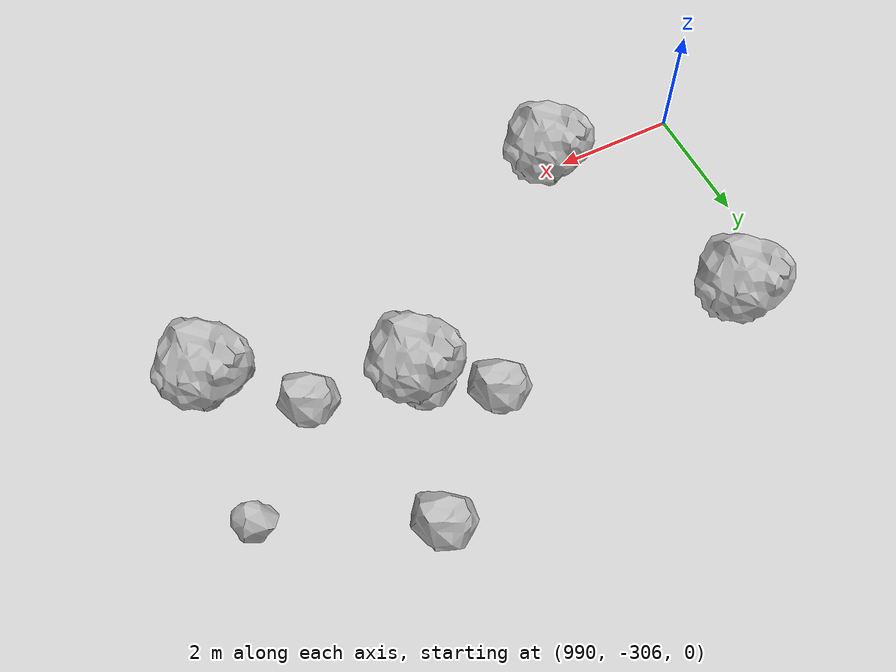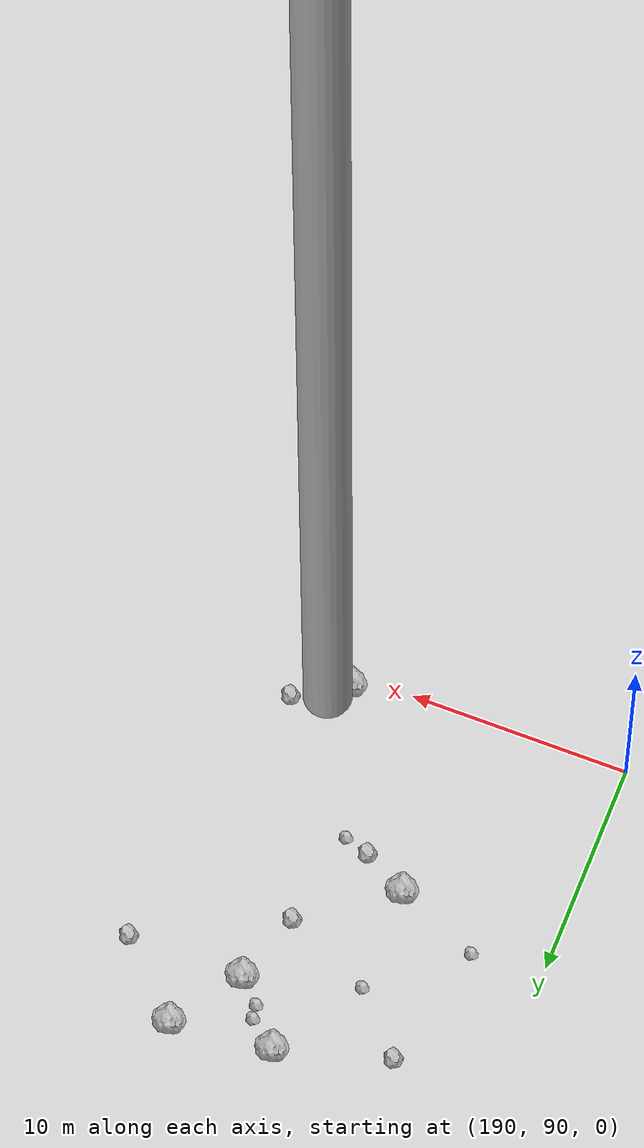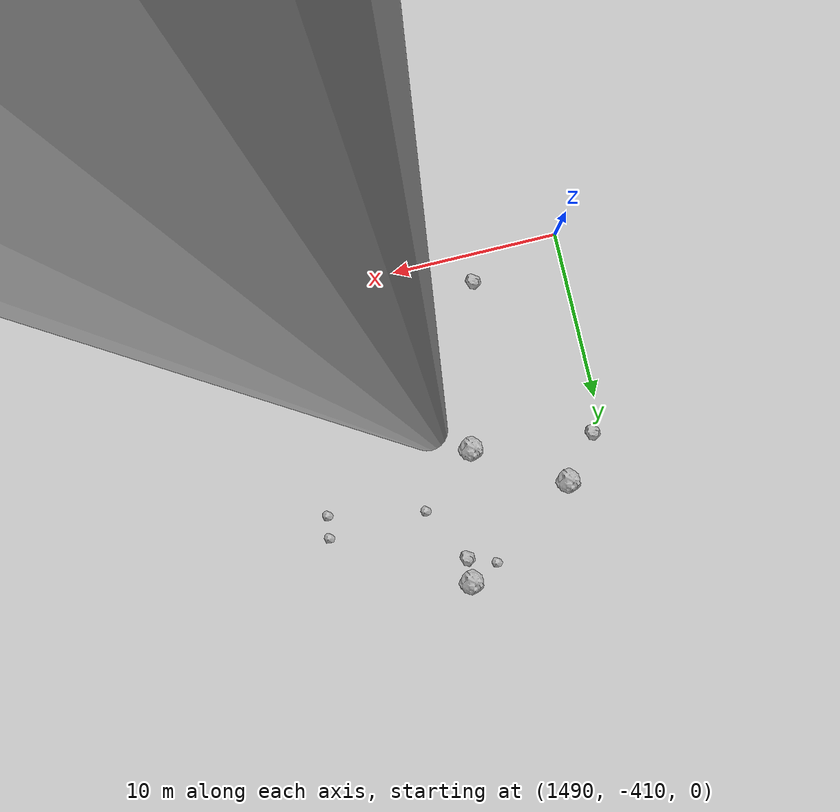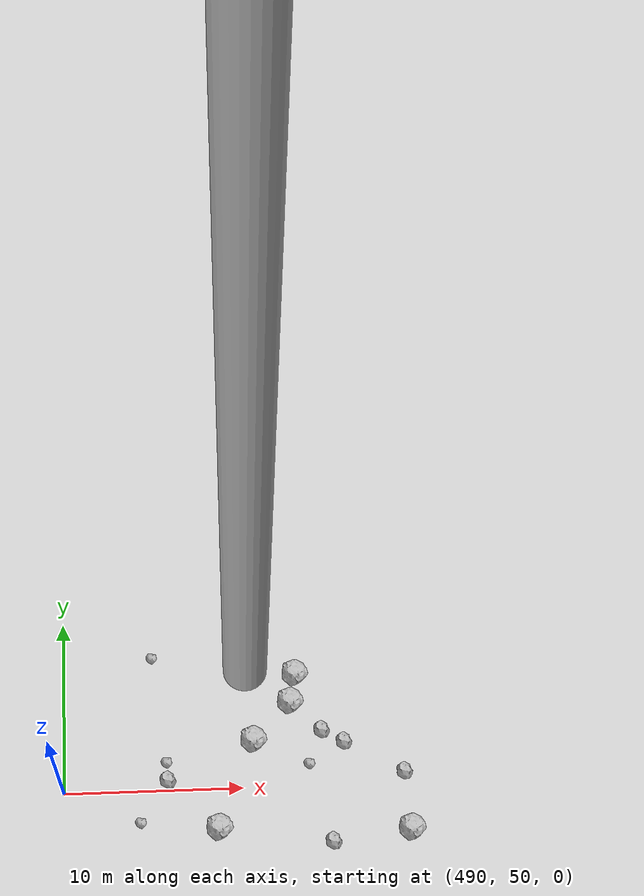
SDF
<?xml version="1.0" ?>
<sdf version="1.6">
  <world name="default">

    <include>
      <uri>model://custom_ground</uri>
    </include>

    <include>
      <uri>model://sun</uri>
    </include>

    <spherical_coordinates>
      <surface_model>EARTH_WGS84</surface_model>
      <latitude_deg>38.161479</latitude_deg>
      <longitude_deg>-122.454630</longitude_deg>
      <elevation>488.0</elevation>
      <heading_deg>90</heading_deg>
    </spherical_coordinates>

    <model name="rock1_0_0">
      <include>
        <uri>model://rock1</uri>
        <pose>18.213155971556475 -3.39460572680591 0.5 0 0 0</pose>
      </include>
    </model>
    <model name="rock1_0_1">
      <include>
        <uri>model://rock1</uri>
        <pose>11.058000199395437 2.4656792155513436 0.5 0 0 0</pose>
      </include>
    </model>
    <model name="rock1_0_2">
      <include>
        <uri>model://rock1</uri>
        <pose>12.27640485391287 2.4503245300040035 0.5 0 0 0</pose>
      </include>
    </model>
    <model name="rock1_0_3">
      <include>
        <uri>model://rock1</uri>
        <pose>16.203168376960665 5.421737206979117 0.5 0 0 0</pose>
      </include>
    </model>
    <model name="rock1_0_4">
      <include>
        <uri>model://rock1</uri>
        <pose>11.284472543740316 3.2859666349605448 0.5 0 0 0</pose>
      </include>
    </model>
    <model name="rock2_0_0">
      <include>
        <uri>model://rock2</uri>
        <pose>15.691867810275738 0.47504765235381896 0.3 0 0 0</pose>
      </include>
    </model>
    <model name="rock2_0_1">
      <include>
        <uri>model://rock2</uri>
        <pose>12.354664125736303 1.4828307257946243 0.3 0 0 0</pose>
      </include>
    </model>
    <model name="rock2_0_2">
      <include>
        <uri>model://rock2</uri>
        <pose>17.91942638184859 5.359239718975852 0.3 0 0 0</pose>
      </include>
    </model>
    <model name="rock2_0_3">
      <include>
        <uri>model://rock2</uri>
        <pose>12.220711812336793 8.499151361618967 0.3 0 0 0</pose>
      </include>
    </model>
    <model name="rock2_0_4">
      <include>
        <uri>model://rock2</uri>
        <pose>9.209998042352153 -8.281199531144516 0.3 0 0 0</pose>
      </include>
    </model>
    <model name="rock3_0_0">
      <include>
        <uri>model://rock3</uri>
        <pose>16.871394474673085 4.780746959759988 0.2 0 0 0</pose>
      </include>
    </model>
    <model name="rock3_0_1">
      <include>
        <uri>model://rock3</uri>
        <pose>12.114181535744816 5.244123502658004 0.2 0 0 0</pose>
      </include>
    </model>
    <model name="rock3_0_2">
      <include>
        <uri>model://rock3</uri>
        <pose>2.167451686059878 4.8133325410114995 0.2 0 0 0</pose>
      </include>
    </model>
    <model name="rock3_0_3">
      <include>
        <uri>model://rock3</uri>
        <pose>1.8353735488164635 2.455813272540226 0.2 0 0 0</pose>
      </include>
    </model>
    <model name="rock3_0_4">
      <include>
        <uri>model://rock3</uri>
        <pose>6.335147070161531 -9.15412961583968 0.2 0 0 0</pose>
      </include>
    </model>
    <model name="rock1_1_0">
      <include>
        <uri>model://rock1</uri>
        <pose>204.18389890398956 108.26773534740549 0.5 0 0 0</pose>
      </include>
    </model>
    <model name="rock1_1_1">
      <include>
        <uri>model://rock1</uri>
        <pose>202.04435876106868 105.18961795881529 0.5 0 0 0</pose>
      </include>
    </model>
    <model name="rock1_1_2">
      <include>
        <uri>model://rock1</uri>
        <pose>202.7571538789295 90.60025432924182 0.5 0 0 0</pose>
      </include>
    </model>
    <model name="rock1_1_3">
      <include>
        <uri>model://rock1</uri>
        <pose>199.60869687236857 107.83770855076253 0.5 0 0 0</pose>
      </include>
    </model>
    <model name="rock1_1_4">
      <include>
        <uri>model://rock1</uri>
        <pose>197.07571412070553 98.98963754792291 0.5 0 0 0</pose>
      </include>
    </model>
    <model name="rock2_1_0">
      <include>
        <uri>model://rock2</uri>
        <pose>205.02147611531885 92.03067925826673 0.3 0 0 0</pose>
      </include>
    </model>
    <model name="rock2_1_1">
      <include>
        <uri>model://rock2</uri>
        <pose>201.01990820530875 101.92537705174175 0.3 0 0 0</pose>
      </include>
    </model>
    <model name="rock2_1_2">
      <include>
        <uri>model://rock2</uri>
        <pose>194.5982786533356 106.36437508244806 0.3 0 0 0</pose>
      </include>
    </model>
    <model name="rock2_1_3">
      <include>
        <uri>model://rock2</uri>
        <pose>199.1031930461876 97.86658763567877 0.3 0 0 0</pose>
      </include>
    </model>
    <model name="rock2_1_4">
      <include>
        <uri>model://rock2</uri>
        <pose>207.30771266107809 105.19816762013924 0.3 0 0 0</pose>
      </include>
    </model>
    <model name="rock3_1_0">
      <include>
        <uri>model://rock3</uri>
        <pose>200.9707431756032 106.14387410031068 0.2 0 0 0</pose>
      </include>
    </model>
    <model name="rock3_1_1">
      <include>
        <uri>model://rock3</uri>
        <pose>193.2132343482697 100.55476282193197 0.2 0 0 0</pose>
      </include>
    </model>
    <model name="rock3_1_2">
      <include>
        <uri>model://rock3</uri>
        <pose>197.01584307325638 103.73664620584957 0.2 0 0 0</pose>
      </include>
    </model>
    <model name="rock3_1_3">
      <include>
        <uri>model://rock3</uri>
        <pose>200.86184232577392 106.78437941748692 0.2 0 0 0</pose>
      </include>
    </model>
    <model name="rock3_1_4">
      <include>
        <uri>model://rock3</uri>
        <pose>200.23423120986658 97.43946211583923 0.2 0 0 0</pose>
      </include>
    </model>
    <model name="rock1_2_0">
      <include>
        <uri>model://rock1</uri>
        <pose>500.6624167556843 52.68753830297562 0.5 0 0 0</pose>
      </include>
    </model>
    <model name="rock1_2_1">
      <include>
        <uri>model://rock1</uri>
        <pose>498.5989358622699 47.72762652828924 0.5 0 0 0</pose>
      </include>
    </model>
    <model name="rock1_2_2">
      <include>
        <uri>model://rock1</uri>
        <pose>503.14525480021206 56.51194829841153 0.5 0 0 0</pose>
      </include>
    </model>
    <model name="rock1_2_3">
      <include>
        <uri>model://rock1</uri>
        <pose>502.81354167724083 54.86591665694458 0.5 0 0 0</pose>
      </include>
    </model>
    <model name="rock1_2_4">
      <include>
        <uri>model://rock1</uri>
        <pose>509.18724872629235 47.332665850718385 0.5 0 0 0</pose>
      </include>
    </model>
    <model name="rock2_2_0">
      <include>
        <uri>model://rock2</uri>
        <pose>495.79609835606317 50.574527414055865 0.3 0 0 0</pose>
      </include>
    </model>
    <model name="rock2_2_1">
      <include>
        <uri>model://rock2</uri>
        <pose>505.70708524909713 52.46121174651189 0.3 0 0 0</pose>
      </include>
    </model>
    <model name="rock2_2_2">
      <include>
        <uri>model://rock2</uri>
        <pose>504.49479438036974 53.17771074267064 0.3 0 0 0</pose>
      </include>
    </model>
    <model name="rock2_2_3">
      <include>
        <uri>model://rock2</uri>
        <pose>504.82663345176843 46.78162643768477 0.3 0 0 0</pose>
      </include>
    </model>
    <model name="rock2_2_4">
      <include>
        <uri>model://rock2</uri>
        <pose>508.9908651460656 50.60598951328733 0.3 0 0 0</pose>
      </include>
    </model>
    <model name="rock3_2_0">
      <include>
        <uri>model://rock3</uri>
        <pose>500.9180598242718 56.8380124217573 0.2 0 0 0</pose>
      </include>
    </model>
    <model name="rock3_2_1">
      <include>
        <uri>model://rock3</uri>
        <pose>495.73024564832485 51.58180801560029 0.2 0 0 0</pose>
      </include>
    </model>
    <model name="rock3_2_2">
      <include>
        <uri>model://rock3</uri>
        <pose>495.01107401966345 57.75833642217724 0.2 0 0 0</pose>
      </include>
    </model>
    <model name="rock3_2_3">
      <include>
        <uri>model://rock3</uri>
        <pose>494.24016252360724 48.17517536953628 0.2 0 0 0</pose>
      </include>
    </model>
    <model name="rock3_2_4">
      <include>
        <uri>model://rock3</uri>
        <pose>503.70812550015216 51.22740844544133 0.2 0 0 0</pose>
      </include>
    </model>
    <model name="rock1_3_0">
      <include>
        <uri>model://rock1</uri>
        <pose>1005.787925347861 -300.67946075519734 0.5 0 0 0</pose>
      </include>
    </model>
    <model name="rock1_3_1">
      <include>
        <uri>model://rock1</uri>
        <pose>990.9103153849998 -302.52839001266585 0.5 0 0 0</pose>
      </include>
    </model>
    <model name="rock1_3_2">
      <include>
        <uri>model://rock1</uri>
        <pose>992.2894608085038 -306.1471374746022 0.5 0 0 0</pose>
      </include>
    </model>
    <model name="rock1_3_3">
      <include>
        <uri>model://rock1</uri>
        <pose>998.6905005521572 -304.77463404445535 0.5 0 0 0</pose>
      </include>
    </model>
    <model name="rock1_3_4">
      <include>
        <uri>model://rock1</uri>
        <pose>995.9095283403299 -303.5114978007883 0.5 0 0 0</pose>
      </include>
    </model>
    <model name="rock2_3_0">
      <include>
        <uri>model://rock2</uri>
        <pose>994.9372559868939 -302.6547228232575 0.3 0 0 0</pose>
      </include>
    </model>
    <model name="rock2_3_1">
      <include>
        <uri>model://rock2</uri>
        <pose>996.5378332203138 -301.1862326566594 0.3 0 0 0</pose>
      </include>
    </model>
    <model name="rock2_3_2">
      <include>
        <uri>model://rock2</uri>
        <pose>1007.9813049682019 -302.60889166419975 0.3 0 0 0</pose>
      </include>
    </model>
    <model name="rock2_3_3">
      <include>
        <uri>model://rock2</uri>
        <pose>995.8901270183285 -303.19778689729964 0.3 0 0 0</pose>
      </include>
    </model>
    <model name="rock2_3_4">
      <include>
        <uri>model://rock2</uri>
        <pose>997.5092000271793 -303.6963626042939 0.3 0 0 0</pose>
      </include>
    </model>
    <model name="rock3_3_0">
      <include>
        <uri>model://rock3</uri>
        <pose>998.06808446421 -291.7742559483585 0.2 0 0 0</pose>
      </include>
    </model>
    <model name="rock3_3_1">
      <include>
        <uri>model://rock3</uri>
        <pose>996.4246289359307 -301.28972420279365 0.2 0 0 0</pose>
      </include>
    </model>
    <model name="rock3_3_2">
      <include>
        <uri>model://rock3</uri>
        <pose>1007.6689562533909 -302.777032616911 0.2 0 0 0</pose>
      </include>
    </model>
    <model name="rock3_3_3">
      <include>
        <uri>model://rock3</uri>
        <pose>1006.5336513096267 -302.3264539334682 0.2 0 0 0</pose>
      </include>
    </model>
    <model name="rock3_3_4">
      <include>
        <uri>model://rock3</uri>
        <pose>998.8363806171494 -302.3930856919325 0.2 0 0 0</pose>
      </include>
    </model>
    <model name="rock1_4_0">
      <include>
        <uri>model://rock1</uri>
        <pose>1497.9393078922046 -398.69068912561573 0.5 0 0 0</pose>
      </include>
    </model>
    <model name="rock1_4_1">
      <include>
        <uri>model://rock1</uri>
        <pose>1499.732974017273 -390.97010586196285 0.5 0 0 0</pose>
      </include>
    </model>
    <model name="rock1_4_2">
      <include>
        <uri>model://rock1</uri>
        <pose>1505.8012677453216 -407.76530428824975 0.5 0 0 0</pose>
      </include>
    </model>
    <model name="rock1_4_3">
      <include>
        <uri>model://rock1</uri>
        <pose>1500.2193873997014 -402.96478906245187 0.5 0 0 0</pose>
      </include>
    </model>
    <model name="rock1_4_4">
      <include>
        <uri>model://rock1</uri>
        <pose>1492.7378919118391 -395.4942494572919 0.5 0 0 0</pose>
      </include>
    </model>
    <model name="rock2_4_0">
      <include>
        <uri>model://rock2</uri>
        <pose>1503.1540059153613 -407.7668072687629 0.3 0 0 0</pose>
      </include>
    </model>
    <model name="rock2_4_1">
      <include>
        <uri>model://rock2</uri>
        <pose>1499.6198606710755 -392.38963731833667 0.3 0 0 0</pose>
      </include>
    </model>
    <model name="rock2_4_2">
      <include>
        <uri>model://rock2</uri>
        <pose>1505.3498163467298 -404.9565526065023 0.3 0 0 0</pose>
      </include>
    </model>
    <model name="rock2_4_3">
      <include>
        <uri>model://rock2</uri>
        <pose>1495.4617973003817 -408.37405763372215 0.3 0 0 0</pose>
      </include>
    </model>
    <model name="rock2_4_4">
      <include>
        <uri>model://rock2</uri>
        <pose>1490.621610859136 -397.9485818861438 0.3 0 0 0</pose>
      </include>
    </model>
    <model name="rock3_4_0">
      <include>
        <uri>model://rock3</uri>
        <pose>1507.1380263873446 -396.8029394421135 0.2 0 0 0</pose>
      </include>
    </model>
    <model name="rock3_4_1">
      <include>
        <uri>model://rock3</uri>
        <pose>1497.9558658482806 -391.7632912002878 0.2 0 0 0</pose>
      </include>
    </model>
    <model name="rock3_4_2">
      <include>
        <uri>model://rock3</uri>
        <pose>1507.3404539449887 -395.47861243089994 0.2 0 0 0</pose>
      </include>
    </model>
    <model name="rock3_4_3">
      <include>
        <uri>model://rock3</uri>
        <pose>1501.3720433416686 -395.7198187228062 0.2 0 0 0</pose>
      </include>
    </model>
    <model name="rock3_4_4">
      <include>
        <uri>model://rock3</uri>
        <pose>1502.4070298237004 -407.5775897031922 0.2 0 0 0</pose>
      </include>
    </model>

    <model name="cylinder_1">
      <static>true</static>
      <link name="link">
        <visual name="visual">
          <geometry>
            <cylinder>
              <radius>1</radius>
              <length>500</length>
            </cylinder>
          </geometry>
        </visual>
      </link>
      <pose>10 0 270 0 0 0</pose>
    </model>

    <model name="cylinder_2">
      <static>true</static>
      <link name="link">
        <visual name="visual">
          <geometry>
            <cylinder>
              <radius>1</radius>
              <length>500</length>
            </cylinder>
          </geometry>
        </visual>
      </link>
      <pose>200 100 270 0 0 0</pose>
    </model>

    <model name="cylinder_3">
      <static>true</static>
      <link name="link">
        <visual name="visual">
          <geometry>
            <cylinder>
              <radius>1</radius>
              <length>500</length>
            </cylinder>
          </geometry>
        </visual>
      </link>
      <pose>500 50 270 0 0 0</pose>
    </model>

    <model name="cylinder_4">
      <static>true</static>
      <link name="link">
        <visual name="visual">
          <geometry>
            <cylinder>
              <radius>1</radius>
              <length>500</length>
            </cylinder>
          </geometry>
        </visual>
      </link>
      <pose>1000 -300 270 0 0 0</pose>
    </model>

    <model name="cylinder_5">
      <static>true</static>
      <link name="link">
        <visual name="visual">
          <geometry>
            <cylinder>
              <radius>1</radius>
              <length>500</length>
            </cylinder>
          </geometry>
        </visual>
      </link>
      <pose>1500 -400 270 0 0 0</pose>
    </model>

  </world>
</sdf>

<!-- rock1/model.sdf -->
<sdf version="1.6">
  <model name="rock1">
    <static>true</static> <!-- Set to true if the model should not move -->
    <pose>0 0 0 0 0 0</pose>

    <!--z offset is 0.5 for full scale-->

    <link name="link">
      <collision name="rock1_collision">
        <geometry>
          <mesh>
            <uri>model://meshes/rock1.dae</uri>
          </mesh>
        </geometry>
      </collision>
      <visual name="rock1_visual">
        <geometry>
          <mesh>
            <uri>model://meshes/rock1.dae</uri>
          </mesh>
        </geometry>
        <material>
          <script>
            <uri>model://materials/scripts/sand_pebbles.material</uri>
            <name>custom_ground/Image</name>
          </script>
        </material>
      </visual>
    </link>
  </model>
</sdf>

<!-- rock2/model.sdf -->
<sdf version="1.6">
  <model name="rock2">
    <static>true</static> <!-- Set to true if the model should not move -->
    <pose>0 0 0 0 0 0</pose>

    <!--z offset is 0.3 for full scale-->

    <link name="link">
      <collision name="rock2_collision">
        <geometry>
          <mesh>
            <uri>model://meshes/rock2.dae</uri>
          </mesh>
        </geometry>
      </collision>
      <visual name="rock2_visual">
        <geometry>
          <mesh>
            <uri>model://meshes/rock2.dae</uri>
          </mesh>
        </geometry>
        <material>
          <script>
            <uri>model://materials/scripts/sand_pebbles.material</uri>
            <name>custom_ground/Image</name>
          </script>
        </material>
      </visual>
    </link>
  </model>
</sdf>

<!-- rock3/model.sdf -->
<sdf version="1.6">
  <model name="rock3">
    <static>true</static> <!-- Set to true if the model should not move -->
    <pose>0 0 0 0 0 0</pose>

    <!--z offset is 0.2 for full scale-->

    <link name="link">
      <collision name="rock3_collision">
        <geometry>
          <mesh>
            <uri>model://meshes/rock3.dae</uri>
          </mesh>
        </geometry>
      </collision>
      <visual name="rock3_visual">
        <geometry>
          <mesh>
            <uri>model://meshes/rock3.dae</uri>
          </mesh>
        </geometry>
        <material>
          <script>
            <uri>model://materials/scripts/sand_pebbles.material</uri>
            <name>custom_ground/Image</name>
          </script>
        </material>
      </visual>
    </link>
  </model>
</sdf>

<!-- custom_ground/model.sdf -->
<sdf version="1.6">
  <model name="custom_ground">
    <static>true</static> <!-- Ground is static and immovable -->
    <link name="ground_link">
      <pose>240 0 0 0 0 0</pose> <!-- Position and orientation relative to the world -->
      <!-- Visual Representation -->
      <visual name="ground_visual">
        <geometry>
          <plane>
            <normal>0 0 1</normal> <!-- Upward facing plane -->
            <size>500 500</size> <!-- Size of the plane -->
          </plane>
        </geometry>
        <material>
          <script>
            <uri>model://materials/scripts/sand_pebbles.material</uri>
            <name>custom_ground/Image</name>
          </script>
        </material>
      </visual>

      <!-- Collision Representation -->
      <collision name="ground_collision">
        <geometry>
          <plane>
            <normal>0 0 1</normal>
            <size>100 100</size>
          </plane>
        </geometry>
      </collision>

    </link>
  </model>
</sdf>
